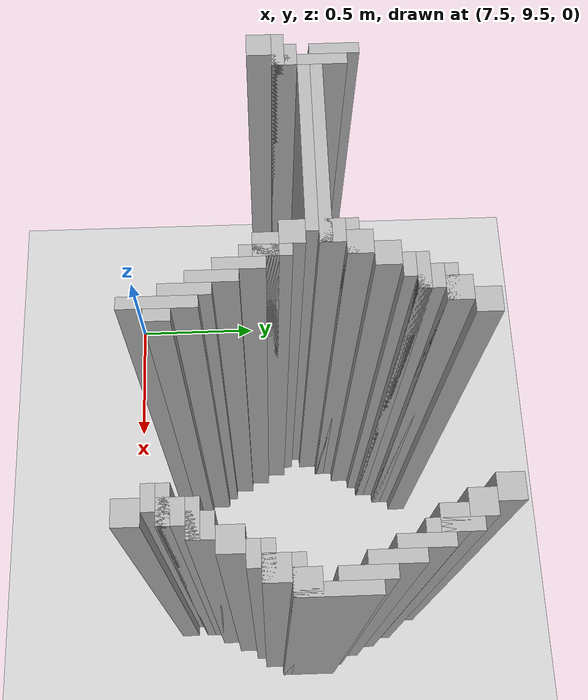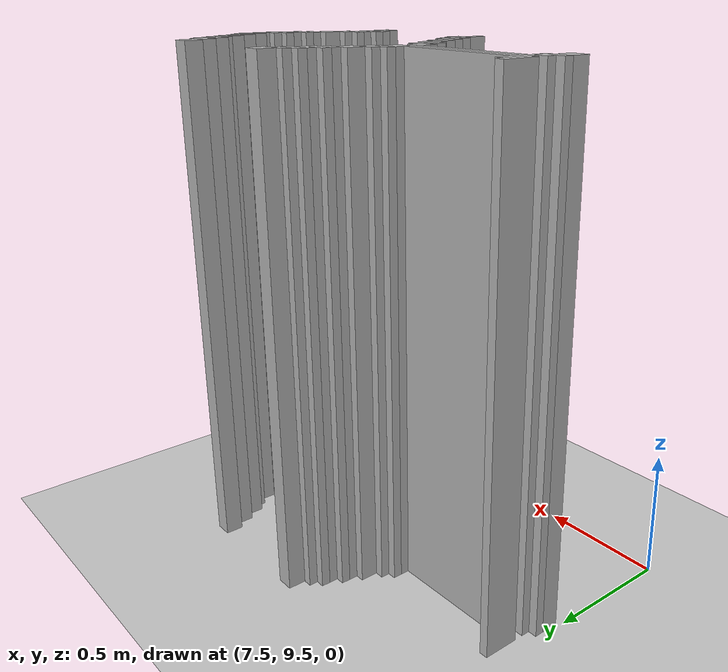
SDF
<sdf version="1.6">
 <world name="slam_world">
  <model name="ground_plane">
   <static>true</static>
   <link name="link">
    <collision name="collision">
     <geometry><plane><normal>0 0 1</normal><size>100 100</size></plane></geometry>
    </collision>
    <visual name="visual">
     <geometry><plane><normal>0 0 1</normal><size>100 100</size></plane></geometry>
     <material>
      <ambient>0.8 0.8 0.8 1</ambient>
      <diffuse>0.8 0.8 0.8 1</diffuse>
      <specular>0.8 0.8 0.8 1</specular>
     </material>
    </visual>
   </link>
  </model>
  <model name="wall_2225">
   <static>true</static>
   <pose>8.352668213457076 10.614849187935034 1.0 0 0 0</pose>
   <link name="link">
    <collision name="collision">
     <geometry><box><size>0.06960556844547564 0.06960556844547564 2.0</size></box></geometry>
    </collision>
    <visual name="visual">
     <geometry><box><size>0.06960556844547564 0.06960556844547564 2.0</size></box></geometry>
     <material><ambient>0.5 0.5 0.5 1</ambient><diffuse>0.7 0.7 0.7 1</diffuse></material>
    </visual>
   </link>
  </model>
  <model name="wall_2226">
   <static>true</static>
   <pose>8.839907192575406 10.614849187935034 1.0 0 0 0</pose>
   <link name="link">
    <collision name="collision">
     <geometry><box><size>0.06960556844547564 0.06960556844547564 2.0</size></box></geometry>
    </collision>
    <visual name="visual">
     <geometry><box><size>0.06960556844547564 0.06960556844547564 2.0</size></box></geometry>
     <material><ambient>0.5 0.5 0.5 1</ambient><diffuse>0.7 0.7 0.7 1</diffuse></material>
    </visual>
   </link>
  </model>
  <model name="wall_2244">
   <static>true</static>
   <pose>8.317865429234338 10.54524361948956 1.0 0 0 0</pose>
   <link name="link">
    <collision name="collision">
     <geometry><box><size>0.06960556844547564 0.06960556844547564 2.0</size></box></geometry>
    </collision>
    <visual name="visual">
     <geometry><box><size>0.06960556844547564 0.06960556844547564 2.0</size></box></geometry>
     <material><ambient>0.5 0.5 0.5 1</ambient><diffuse>0.7 0.7 0.7 1</diffuse></material>
    </visual>
   </link>
  </model>
  <model name="wall_2245">
   <static>true</static>
   <pose>8.874709976798144 10.54524361948956 1.0 0 0 0</pose>
   <link name="link">
    <collision name="collision">
     <geometry><box><size>0.06960556844547564 0.06960556844547564 2.0</size></box></geometry>
    </collision>
    <visual name="visual">
     <geometry><box><size>0.06960556844547564 0.06960556844547564 2.0</size></box></geometry>
     <material><ambient>0.5 0.5 0.5 1</ambient><diffuse>0.7 0.7 0.7 1</diffuse></material>
    </visual>
   </link>
  </model>
  <model name="wall_2261">
   <static>true</static>
   <pose>8.30046403712297 10.52784222737819 1.0 0 0 0</pose>
   <link name="link">
    <collision name="collision">
     <geometry><box><size>0.10440835266821345 0.03480278422273782 2.0</size></box></geometry>
    </collision>
    <visual name="visual">
     <geometry><box><size>0.10440835266821345 0.03480278422273782 2.0</size></box></geometry>
     <material><ambient>0.5 0.5 0.5 1</ambient><diffuse>0.7 0.7 0.7 1</diffuse></material>
    </visual>
   </link>
  </model>
  <model name="wall_2262">
   <static>true</static>
   <pose>8.92691415313225 10.475638051044083 1.0 0 0 0</pose>
   <link name="link">
    <collision name="collision">
     <geometry><box><size>0.03480278422273782 0.13921113689095127 2.0</size></box></geometry>
    </collision>
    <visual name="visual">
     <geometry><box><size>0.03480278422273782 0.13921113689095127 2.0</size></box></geometry>
     <material><ambient>0.5 0.5 0.5 1</ambient><diffuse>0.7 0.7 0.7 1</diffuse></material>
    </visual>
   </link>
  </model>
  <model name="wall_2278">
   <static>true</static>
   <pose>8.2830626450116 10.475638051044083 1.0 0 0 0</pose>
   <link name="link">
    <collision name="collision">
     <geometry><box><size>0.06960556844547564 0.06960556844547564 2.0</size></box></geometry>
    </collision>
    <visual name="visual">
     <geometry><box><size>0.06960556844547564 0.06960556844547564 2.0</size></box></geometry>
     <material><ambient>0.5 0.5 0.5 1</ambient><diffuse>0.7 0.7 0.7 1</diffuse></material>
    </visual>
   </link>
  </model>
  <model name="wall_2279">
   <static>true</static>
   <pose>8.909512761020881 10.475638051044083 1.0 0 0 0</pose>
   <link name="link">
    <collision name="collision">
     <geometry><box><size>0.06960556844547564 0.06960556844547564 2.0</size></box></geometry>
    </collision>
    <visual name="visual">
     <geometry><box><size>0.06960556844547564 0.06960556844547564 2.0</size></box></geometry>
     <material><ambient>0.5 0.5 0.5 1</ambient><diffuse>0.7 0.7 0.7 1</diffuse></material>
    </visual>
   </link>
  </model>
  <model name="wall_2295">
   <static>true</static>
   <pose>8.265661252900232 10.458236658932714 1.0 0 0 0</pose>
   <link name="link">
    <collision name="collision">
     <geometry><box><size>0.10440835266821345 0.03480278422273782 2.0</size></box></geometry>
    </collision>
    <visual name="visual">
     <geometry><box><size>0.10440835266821345 0.03480278422273782 2.0</size></box></geometry>
     <material><ambient>0.5 0.5 0.5 1</ambient><diffuse>0.7 0.7 0.7 1</diffuse></material>
    </visual>
   </link>
  </model>
  <model name="wall_2296">
   <static>true</static>
   <pose>8.961716937354987 10.406032482598608 1.0 0 0 0</pose>
   <link name="link">
    <collision name="collision">
     <geometry><box><size>0.03480278422273782 0.13921113689095127 2.0</size></box></geometry>
    </collision>
    <visual name="visual">
     <geometry><box><size>0.03480278422273782 0.13921113689095127 2.0</size></box></geometry>
     <material><ambient>0.5 0.5 0.5 1</ambient><diffuse>0.7 0.7 0.7 1</diffuse></material>
    </visual>
   </link>
  </model>
  <model name="wall_2307">
   <static>true</static>
   <pose>8.248259860788863 10.423433874709977 1.0 0 0 0</pose>
   <link name="link">
    <collision name="collision">
     <geometry><box><size>0.06960556844547564 0.03480278422273782 2.0</size></box></geometry>
    </collision>
    <visual name="visual">
     <geometry><box><size>0.06960556844547564 0.03480278422273782 2.0</size></box></geometry>
     <material><ambient>0.5 0.5 0.5 1</ambient><diffuse>0.7 0.7 0.7 1</diffuse></material>
    </visual>
   </link>
  </model>
  <model name="wall_2320">
   <static>true</static>
   <pose>8.213457076566124 10.37122969837587 1.0 0 0 0</pose>
   <link name="link">
    <collision name="collision">
     <geometry><box><size>0.06960556844547564 0.06960556844547564 2.0</size></box></geometry>
    </collision>
    <visual name="visual">
     <geometry><box><size>0.06960556844547564 0.06960556844547564 2.0</size></box></geometry>
     <material><ambient>0.5 0.5 0.5 1</ambient><diffuse>0.7 0.7 0.7 1</diffuse></material>
    </visual>
   </link>
  </model>
  <model name="wall_2321">
   <static>true</static>
   <pose>8.996519721577727 10.336426914153131 1.0 0 0 0</pose>
   <link name="link">
    <collision name="collision">
     <geometry><box><size>0.03480278422273782 0.13921113689095127 2.0</size></box></geometry>
    </collision>
    <visual name="visual">
     <geometry><box><size>0.03480278422273782 0.13921113689095127 2.0</size></box></geometry>
     <material><ambient>0.5 0.5 0.5 1</ambient><diffuse>0.7 0.7 0.7 1</diffuse></material>
    </visual>
   </link>
  </model>
  <model name="wall_2336">
   <static>true</static>
   <pose>7.569605568445476 10.266821345707656 1.0 0 0 0</pose>
   <link name="link">
    <collision name="collision">
     <geometry><box><size>0.03480278422273782 0.13921113689095127 2.0</size></box></geometry>
    </collision>
    <visual name="visual">
     <geometry><box><size>0.03480278422273782 0.13921113689095127 2.0</size></box></geometry>
     <material><ambient>0.5 0.5 0.5 1</ambient><diffuse>0.7 0.7 0.7 1</diffuse></material>
    </visual>
   </link>
  </model>
  <model name="wall_2337">
   <static>true</static>
   <pose>8.178654292343387 10.301624129930394 1.0 0 0 0</pose>
   <link name="link">
    <collision name="collision">
     <geometry><box><size>0.06960556844547564 0.06960556844547564 2.0</size></box></geometry>
    </collision>
    <visual name="visual">
     <geometry><box><size>0.06960556844547564 0.06960556844547564 2.0</size></box></geometry>
     <material><ambient>0.5 0.5 0.5 1</ambient><diffuse>0.7 0.7 0.7 1</diffuse></material>
    </visual>
   </link>
  </model>
  <model name="wall_2338">
   <static>true</static>
   <pose>9.031322505800464 10.266821345707656 1.0 0 0 0</pose>
   <link name="link">
    <collision name="collision">
     <geometry><box><size>0.03480278422273782 0.13921113689095127 2.0</size></box></geometry>
    </collision>
    <visual name="visual">
     <geometry><box><size>0.03480278422273782 0.13921113689095127 2.0</size></box></geometry>
     <material><ambient>0.5 0.5 0.5 1</ambient><diffuse>0.7 0.7 0.7 1</diffuse></material>
    </visual>
   </link>
  </model>
  <model name="wall_2353">
   <static>true</static>
   <pose>7.604408352668213 10.19721577726218 1.0 0 0 0</pose>
   <link name="link">
    <collision name="collision">
     <geometry><box><size>0.03480278422273782 0.2088167053364269 2.0</size></box></geometry>
    </collision>
    <visual name="visual">
     <geometry><box><size>0.03480278422273782 0.2088167053364269 2.0</size></box></geometry>
     <material><ambient>0.5 0.5 0.5 1</ambient><diffuse>0.7 0.7 0.7 1</diffuse></material>
    </visual>
   </link>
  </model>
  <model name="wall_2354">
   <static>true</static>
   <pose>8.161252900232018 10.284222737819025 1.0 0 0 0</pose>
   <link name="link">
    <collision name="collision">
     <geometry><box><size>0.10440835266821345 0.03480278422273782 2.0</size></box></geometry>
    </collision>
    <visual name="visual">
     <geometry><box><size>0.10440835266821345 0.03480278422273782 2.0</size></box></geometry>
     <material><ambient>0.5 0.5 0.5 1</ambient><diffuse>0.7 0.7 0.7 1</diffuse></material>
    </visual>
   </link>
  </model>
  <model name="wall_2355">
   <static>true</static>
   <pose>9.066125290023201 10.19721577726218 1.0 0 0 0</pose>
   <link name="link">
    <collision name="collision">
     <geometry><box><size>0.03480278422273782 0.2088167053364269 2.0</size></box></geometry>
    </collision>
    <visual name="visual">
     <geometry><box><size>0.03480278422273782 0.2088167053364269 2.0</size></box></geometry>
     <material><ambient>0.5 0.5 0.5 1</ambient><diffuse>0.7 0.7 0.7 1</diffuse></material>
    </visual>
   </link>
  </model>
  <model name="wall_2366">
   <static>true</static>
   <pose>8.14385150812065 10.232018561484919 1.0 0 0 0</pose>
   <link name="link">
    <collision name="collision">
     <geometry><box><size>0.06960556844547564 0.06960556844547564 2.0</size></box></geometry>
    </collision>
    <visual name="visual">
     <geometry><box><size>0.06960556844547564 0.06960556844547564 2.0</size></box></geometry>
     <material><ambient>0.5 0.5 0.5 1</ambient><diffuse>0.7 0.7 0.7 1</diffuse></material>
    </visual>
   </link>
  </model>
  <model name="wall_2376">
   <static>true</static>
   <pose>7.900232018561485 10.214617169373549 1.0 0 0 0</pose>
   <link name="link">
    <collision name="collision">
     <geometry><box><size>0.5568445475638051 0.03480278422273782 2.0</size></box></geometry>
    </collision>
    <visual name="visual">
     <geometry><box><size>0.5568445475638051 0.03480278422273782 2.0</size></box></geometry>
     <material><ambient>0.5 0.5 0.5 1</ambient><diffuse>0.7 0.7 0.7 1</diffuse></material>
    </visual>
   </link>
  </model>
  <model name="wall_2387">
   <static>true</static>
   <pose>7.882830626450116 10.179814385150811 1.0 0 0 0</pose>
   <link name="link">
    <collision name="collision">
     <geometry><box><size>0.5220417633410672 0.03480278422273782 2.0</size></box></geometry>
    </collision>
    <visual name="visual">
     <geometry><box><size>0.5220417633410672 0.03480278422273782 2.0</size></box></geometry>
     <material><ambient>0.5 0.5 0.5 1</ambient><diffuse>0.7 0.7 0.7 1</diffuse></material>
    </visual>
   </link>
  </model>
  <model name="wall_2397">
   <static>true</static>
   <pose>7.587006960556844 10.127610208816705 1.0 0 0 0</pose>
   <link name="link">
    <collision name="collision">
     <geometry><box><size>0.06960556844547564 0.06960556844547564 2.0</size></box></geometry>
    </collision>
    <visual name="visual">
     <geometry><box><size>0.06960556844547564 0.06960556844547564 2.0</size></box></geometry>
     <material><ambient>0.5 0.5 0.5 1</ambient><diffuse>0.7 0.7 0.7 1</diffuse></material>
    </visual>
   </link>
  </model>
  <model name="wall_2398">
   <static>true</static>
   <pose>8.14385150812065 10.127610208816705 1.0 0 0 0</pose>
   <link name="link">
    <collision name="collision">
     <geometry><box><size>0.06960556844547564 0.06960556844547564 2.0</size></box></geometry>
    </collision>
    <visual name="visual">
     <geometry><box><size>0.06960556844547564 0.06960556844547564 2.0</size></box></geometry>
     <material><ambient>0.5 0.5 0.5 1</ambient><diffuse>0.7 0.7 0.7 1</diffuse></material>
    </visual>
   </link>
  </model>
  <model name="wall_2399">
   <static>true</static>
   <pose>9.048723897911833 10.127610208816705 1.0 0 0 0</pose>
   <link name="link">
    <collision name="collision">
     <geometry><box><size>0.06960556844547564 0.06960556844547564 2.0</size></box></geometry>
    </collision>
    <visual name="visual">
     <geometry><box><size>0.06960556844547564 0.06960556844547564 2.0</size></box></geometry>
     <material><ambient>0.5 0.5 0.5 1</ambient><diffuse>0.7 0.7 0.7 1</diffuse></material>
    </visual>
   </link>
  </model>
  <model name="wall_2413">
   <static>true</static>
   <pose>7.569605568445476 10.110208816705336 1.0 0 0 0</pose>
   <link name="link">
    <collision name="collision">
     <geometry><box><size>0.10440835266821345 0.03480278422273782 2.0</size></box></geometry>
    </collision>
    <visual name="visual">
     <geometry><box><size>0.10440835266821345 0.03480278422273782 2.0</size></box></geometry>
     <material><ambient>0.5 0.5 0.5 1</ambient><diffuse>0.7 0.7 0.7 1</diffuse></material>
    </visual>
   </link>
  </model>
  <model name="wall_2414">
   <static>true</static>
   <pose>8.196055684454755 10.058004640371228 1.0 0 0 0</pose>
   <link name="link">
    <collision name="collision">
     <geometry><box><size>0.03480278422273782 0.13921113689095127 2.0</size></box></geometry>
    </collision>
    <visual name="visual">
     <geometry><box><size>0.03480278422273782 0.13921113689095127 2.0</size></box></geometry>
     <material><ambient>0.5 0.5 0.5 1</ambient><diffuse>0.7 0.7 0.7 1</diffuse></material>
    </visual>
   </link>
  </model>
  <model name="wall_2415">
   <static>true</static>
   <pose>9.031322505800464 10.110208816705336 1.0 0 0 0</pose>
   <link name="link">
    <collision name="collision">
     <geometry><box><size>0.10440835266821345 0.03480278422273782 2.0</size></box></geometry>
    </collision>
    <visual name="visual">
     <geometry><box><size>0.10440835266821345 0.03480278422273782 2.0</size></box></geometry>
     <material><ambient>0.5 0.5 0.5 1</ambient><diffuse>0.7 0.7 0.7 1</diffuse></material>
    </visual>
   </link>
  </model>
  <model name="wall_2429">
   <static>true</static>
   <pose>7.552204176334106 10.058004640371228 1.0 0 0 0</pose>
   <link name="link">
    <collision name="collision">
     <geometry><box><size>0.06960556844547564 0.06960556844547564 2.0</size></box></geometry>
    </collision>
    <visual name="visual">
     <geometry><box><size>0.06960556844547564 0.06960556844547564 2.0</size></box></geometry>
     <material><ambient>0.5 0.5 0.5 1</ambient><diffuse>0.7 0.7 0.7 1</diffuse></material>
    </visual>
   </link>
  </model>
  <model name="wall_2430">
   <static>true</static>
   <pose>8.178654292343387 10.058004640371228 1.0 0 0 0</pose>
   <link name="link">
    <collision name="collision">
     <geometry><box><size>0.06960556844547564 0.06960556844547564 2.0</size></box></geometry>
    </collision>
    <visual name="visual">
     <geometry><box><size>0.06960556844547564 0.06960556844547564 2.0</size></box></geometry>
     <material><ambient>0.5 0.5 0.5 1</ambient><diffuse>0.7 0.7 0.7 1</diffuse></material>
    </visual>
   </link>
  </model>
  <model name="wall_2431">
   <static>true</static>
   <pose>9.013921113689095 10.058004640371228 1.0 0 0 0</pose>
   <link name="link">
    <collision name="collision">
     <geometry><box><size>0.06960556844547564 0.06960556844547564 2.0</size></box></geometry>
    </collision>
    <visual name="visual">
     <geometry><box><size>0.06960556844547564 0.06960556844547564 2.0</size></box></geometry>
     <material><ambient>0.5 0.5 0.5 1</ambient><diffuse>0.7 0.7 0.7 1</diffuse></material>
    </visual>
   </link>
  </model>
  <model name="wall_2446">
   <static>true</static>
   <pose>8.230858468677495 9.988399071925754 1.0 0 0 0</pose>
   <link name="link">
    <collision name="collision">
     <geometry><box><size>0.03480278422273782 0.13921113689095127 2.0</size></box></geometry>
    </collision>
    <visual name="visual">
     <geometry><box><size>0.03480278422273782 0.13921113689095127 2.0</size></box></geometry>
     <material><ambient>0.5 0.5 0.5 1</ambient><diffuse>0.7 0.7 0.7 1</diffuse></material>
    </visual>
   </link>
  </model>
  <model name="wall_2447">
   <static>true</static>
   <pose>8.996519721577727 10.04060324825986 1.0 0 0 0</pose>
   <link name="link">
    <collision name="collision">
     <geometry><box><size>0.10440835266821345 0.03480278422273782 2.0</size></box></geometry>
    </collision>
    <visual name="visual">
     <geometry><box><size>0.10440835266821345 0.03480278422273782 2.0</size></box></geometry>
     <material><ambient>0.5 0.5 0.5 1</ambient><diffuse>0.7 0.7 0.7 1</diffuse></material>
    </visual>
   </link>
  </model>
  <model name="wall_2459">
   <static>true</static>
   <pose>8.979118329466356 10.005800464037122 1.0 0 0 0</pose>
   <link name="link">
    <collision name="collision">
     <geometry><box><size>0.06960556844547564 0.03480278422273782 2.0</size></box></geometry>
    </collision>
    <visual name="visual">
     <geometry><box><size>0.06960556844547564 0.03480278422273782 2.0</size></box></geometry>
     <material><ambient>0.5 0.5 0.5 1</ambient><diffuse>0.7 0.7 0.7 1</diffuse></material>
    </visual>
   </link>
  </model>
  <model name="wall_2471">
   <static>true</static>
   <pose>8.265661252900232 9.918793503480279 1.0 0 0 0</pose>
   <link name="link">
    <collision name="collision">
     <geometry><box><size>0.03480278422273782 0.13921113689095127 2.0</size></box></geometry>
    </collision>
    <visual name="visual">
     <geometry><box><size>0.03480278422273782 0.13921113689095127 2.0</size></box></geometry>
     <material><ambient>0.5 0.5 0.5 1</ambient><diffuse>0.7 0.7 0.7 1</diffuse></material>
    </visual>
   </link>
  </model>
  <model name="wall_2472">
   <static>true</static>
   <pose>8.944315545243619 9.953596287703016 1.0 0 0 0</pose>
   <link name="link">
    <collision name="collision">
     <geometry><box><size>0.06960556844547564 0.06960556844547564 2.0</size></box></geometry>
    </collision>
    <visual name="visual">
     <geometry><box><size>0.06960556844547564 0.06960556844547564 2.0</size></box></geometry>
     <material><ambient>0.5 0.5 0.5 1</ambient><diffuse>0.7 0.7 0.7 1</diffuse></material>
    </visual>
   </link>
  </model>
  <model name="wall_2487">
   <static>true</static>
   <pose>8.30046403712297 9.849187935034802 1.0 0 0 0</pose>
   <link name="link">
    <collision name="collision">
     <geometry><box><size>0.03480278422273782 0.13921113689095127 2.0</size></box></geometry>
    </collision>
    <visual name="visual">
     <geometry><box><size>0.03480278422273782 0.13921113689095127 2.0</size></box></geometry>
     <material><ambient>0.5 0.5 0.5 1</ambient><diffuse>0.7 0.7 0.7 1</diffuse></material>
    </visual>
   </link>
  </model>
  <model name="wall_2488">
   <static>true</static>
   <pose>8.909512761020881 9.88399071925754 1.0 0 0 0</pose>
   <link name="link">
    <collision name="collision">
     <geometry><box><size>0.06960556844547564 0.06960556844547564 2.0</size></box></geometry>
    </collision>
    <visual name="visual">
     <geometry><box><size>0.06960556844547564 0.06960556844547564 2.0</size></box></geometry>
     <material><ambient>0.5 0.5 0.5 1</ambient><diffuse>0.7 0.7 0.7 1</diffuse></material>
    </visual>
   </link>
  </model>
  <model name="wall_2503">
   <static>true</static>
   <pose>8.335266821345707 9.779582366589327 1.0 0 0 0</pose>
   <link name="link">
    <collision name="collision">
     <geometry><box><size>0.03480278422273782 0.2088167053364269 2.0</size></box></geometry>
    </collision>
    <visual name="visual">
     <geometry><box><size>0.03480278422273782 0.2088167053364269 2.0</size></box></geometry>
     <material><ambient>0.5 0.5 0.5 1</ambient><diffuse>0.7 0.7 0.7 1</diffuse></material>
    </visual>
   </link>
  </model>
  <model name="wall_2504">
   <static>true</static>
   <pose>8.892111368909513 9.86658932714617 1.0 0 0 0</pose>
   <link name="link">
    <collision name="collision">
     <geometry><box><size>0.10440835266821345 0.03480278422273782 2.0</size></box></geometry>
    </collision>
    <visual name="visual">
     <geometry><box><size>0.10440835266821345 0.03480278422273782 2.0</size></box></geometry>
     <material><ambient>0.5 0.5 0.5 1</ambient><diffuse>0.7 0.7 0.7 1</diffuse></material>
    </visual>
   </link>
  </model>
  <model name="wall_2516">
   <static>true</static>
   <pose>8.874709976798144 9.814385150812065 1.0 0 0 0</pose>
   <link name="link">
    <collision name="collision">
     <geometry><box><size>0.06960556844547564 0.06960556844547564 2.0</size></box></geometry>
    </collision>
    <visual name="visual">
     <geometry><box><size>0.06960556844547564 0.06960556844547564 2.0</size></box></geometry>
     <material><ambient>0.5 0.5 0.5 1</ambient><diffuse>0.7 0.7 0.7 1</diffuse></material>
    </visual>
   </link>
  </model>
  <model name="wall_2526">
   <static>true</static>
   <pose>8.370069605568444 9.779582366589327 1.0 0 0 0</pose>
   <link name="link">
    <collision name="collision">
     <geometry><box><size>0.03480278422273782 0.06960556844547564 2.0</size></box></geometry>
    </collision>
    <visual name="visual">
     <geometry><box><size>0.03480278422273782 0.06960556844547564 2.0</size></box></geometry>
     <material><ambient>0.5 0.5 0.5 1</ambient><diffuse>0.7 0.7 0.7 1</diffuse></material>
    </visual>
   </link>
  </model>
  <model name="wall_2527">
   <static>true</static>
   <pose>8.857308584686775 9.796983758700696 1.0 0 0 0</pose>
   <link name="link">
    <collision name="collision">
     <geometry><box><size>0.10440835266821345 0.03480278422273782 2.0</size></box></geometry>
    </collision>
    <visual name="visual">
     <geometry><box><size>0.10440835266821345 0.03480278422273782 2.0</size></box></geometry>
     <material><ambient>0.5 0.5 0.5 1</ambient><diffuse>0.7 0.7 0.7 1</diffuse></material>
    </visual>
   </link>
  </model>
  <model name="wall_2539">
   <static>true</static>
   <pose>8.839907192575406 9.762180974477959 1.0 0 0 0</pose>
   <link name="link">
    <collision name="collision">
     <geometry><box><size>0.06960556844547564 0.03480278422273782 2.0</size></box></geometry>
    </collision>
    <visual name="visual">
     <geometry><box><size>0.06960556844547564 0.03480278422273782 2.0</size></box></geometry>
     <material><ambient>0.5 0.5 0.5 1</ambient><diffuse>0.7 0.7 0.7 1</diffuse></material>
    </visual>
   </link>
  </model>
  <model name="wall_2548">
   <static>true</static>
   <pose>8.874709976798144 9.70997679814385 1.0 0 0 0</pose>
   <link name="link">
    <collision name="collision">
     <geometry><box><size>0.06960556844547564 0.06960556844547564 2.0</size></box></geometry>
    </collision>
    <visual name="visual">
     <geometry><box><size>0.06960556844547564 0.06960556844547564 2.0</size></box></geometry>
     <material><ambient>0.5 0.5 0.5 1</ambient><diffuse>0.7 0.7 0.7 1</diffuse></material>
    </visual>
   </link>
  </model>
 </world>
</sdf>
